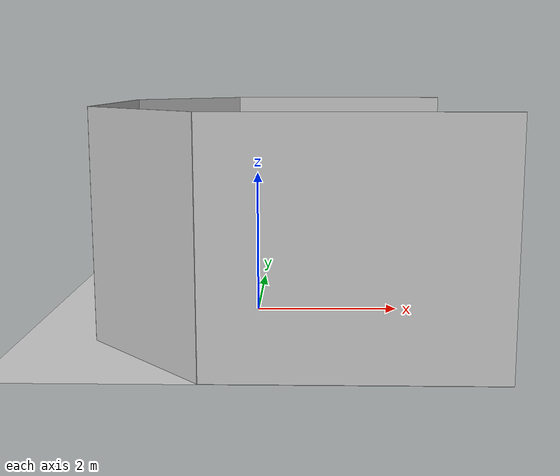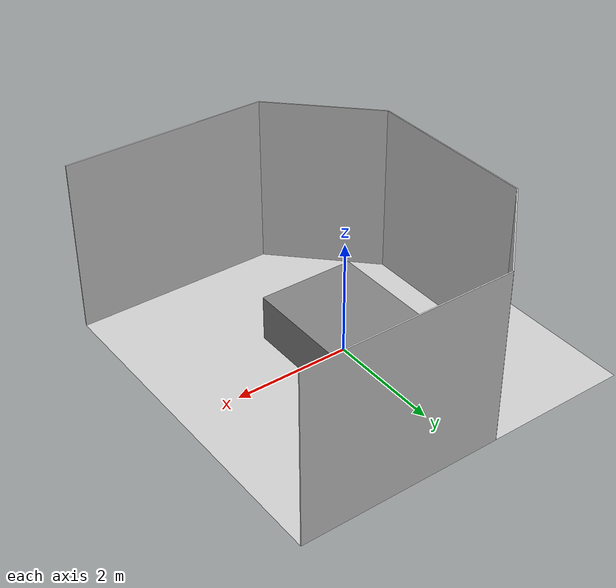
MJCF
<mujoco model="table_arena">
  <asset>
    <texture builtin="gradient" height="256" rgb1=".9 .9 1." rgb2=".2 .3 .4" type="skybox" width="256"/>
    <texture file="../../textures/light-gray-floor-tile.png" type="2d" name="texplane"/>
    <material name="floorplane" reflectance="0.01" shininess="0.0" specular="0.0" texrepeat="2 2" texture="texplane" texuniform="true"/>
    <!-- light wood table texture and material-->
    <texture file="../../textures/light-wood.png" type="cube" name="tex-light-wood"/>
    <material name="table_wood" reflectance="0.2" shininess="0.3" specular="0.1" texrepeat="2 2" texture="tex-light-wood" />
    <!-- dark wood legs -->
    <texture file="../../textures/dark-wood.png" type="cube" name="tex-dark-wood"/>
    <material name="table_legs_wood" reflectance="0.3" shininess="0.4" texrepeat="1 1" texture="tex-dark-wood" />
    <!-- plaster walls -->
    <texture file="../../textures/light-gray-plaster.png" type="2d" name="tex-light-gray-plaster"/>
    <material name="walls_mat" reflectance="0.0" shininess="0.1" specular="0.1" texrepeat="3 3" texture="tex-light-gray-plaster" texuniform="true" />
    <!-- added table texture and material for domain randomization -->
    <texture  name="textable" builtin="flat" height="512" width="512" rgb1="0.5 0.5 0.5" rgb2="0.5 0.5 0.5"/>
    <material name="table_mat" texture="textable" />

  </asset>
  <worldbody>
    <!-- Floor -->
    <geom condim="3" group="1" material="floorplane" name="floor" pos="0 0 0" size="3 3 .125" type="plane"/>
    <!-- Walls (visual only) -->
    <geom pos="-1.25 2.25 1.5" quat="0.6532815 0.6532815 0.2705981 0.2705981" size="1.06 1.5 0.01" type="box" conaffinity="0" contype="0" group="1" name="wall_leftcorner_visual" material="walls_mat"/>
    <geom pos="-1.25 -2.25 1.5" quat="0.6532815 0.6532815 -0.2705981 -0.2705981" size="1.06 1.5 0.01" type="box" conaffinity="0" contype="0" group="1" name="wall_rightcorner_visual" material="walls_mat"/>
    <geom pos="1.25 3 1.5" quat="0.7071 0.7071 0 0" size="1.75 1.5 0.01" type="box" conaffinity="0" contype="0" group="1" name="wall_left_visual" material="walls_mat"/>
    <geom pos="1.25 -3 1.5" quat="0.7071 -0.7071 0 0" size="1.75 1.5 0.01" type="box" conaffinity="0" contype="0" group="1" name="wall_right_visual" material="walls_mat"/>
    <geom pos="-2 0 1.5" quat="0.5 0.5 0.5 0.5" size="1.5 1.5 0.01" type="box" conaffinity="0" contype="0" group="1" name="wall_rear_visual" material="walls_mat"/>
    <!-- Table body -->
    <body name="table" pos="0 0 0.4">
      <geom pos="0 0 0" size="0.85 1.0 0.4" type="box" group="0" name="table_collision" friction="1 0.005 0.0001"/>
      <geom pos="0 0 0" size="0.85 1.0 0.4" type="box" conaffinity="0" contype="0" group="1" name="table_visual" material="table_wood"/>
      <site pos="0 0 0.4" name="table_top" size="0.001 0.001 0.001" rgba="0 0 0 0"/>
      <!-- Legs positioned at corners -->
      <geom pos="0.75 0.90 -0.3" size="0.05 0.3" type="cylinder" conaffinity="0" contype="0" group="1" name="table_leg1_visual" material="table_legs_wood"/>
      <geom pos="0.75 -0.90 -0.3" size="0.05 0.3" type="cylinder" conaffinity="0" contype="0" group="1" name="table_leg2_visual" material="table_legs_wood"/>
      <geom pos="-0.75 0.90 -0.3" size="0.05 0.3" type="cylinder" conaffinity="0" contype="0" group="1" name="table_leg3_visual" material="table_legs_wood"/>
      <geom pos="-0.75 -0.90 -0.3" size="0.05 0.3" type="cylinder" conaffinity="0" contype="0" group="1" name="table_leg4_visual" material="table_legs_wood"/>
      <!-- Arm mount point for robot attachment -->
      <body name="arm_mount" pos="-0.4 0 0.41">
        <!-- Robot will be attached here using weld constraint -->
      </body>
    </body>
    <light pos="1.0 1.0 1.5" dir="-0.2 -0.2 -1" specular="0.3 0.3 0.3" directional="true" castshadow="false"/>
    <!-- front view -->
    <camera mode="fixed" name="frontview" pos="1.6 0 1.45" quat="0.56 0.43 0.43 0.56"/>
    <!-- bird view -->
    <camera mode="fixed" name="birdview" pos="-0.2 0 3.0" quat="0.7071 0 0 0.7071"/>
    <!-- agent view -->
    <camera mode="fixed" name="agentview" pos="0.5 0 1.35" quat="0.653 0.271 0.271 0.653"/>
    <!-- side view -->
    <camera mode="fixed" name="sideview" pos="-0.05651774593317116 1.2761224129427358 1.4879572214102434" quat="0.009905065491771751 0.006877963156909582 0.5912228352893879 0.806418094001364" />
  </worldbody>
</mujoco>
